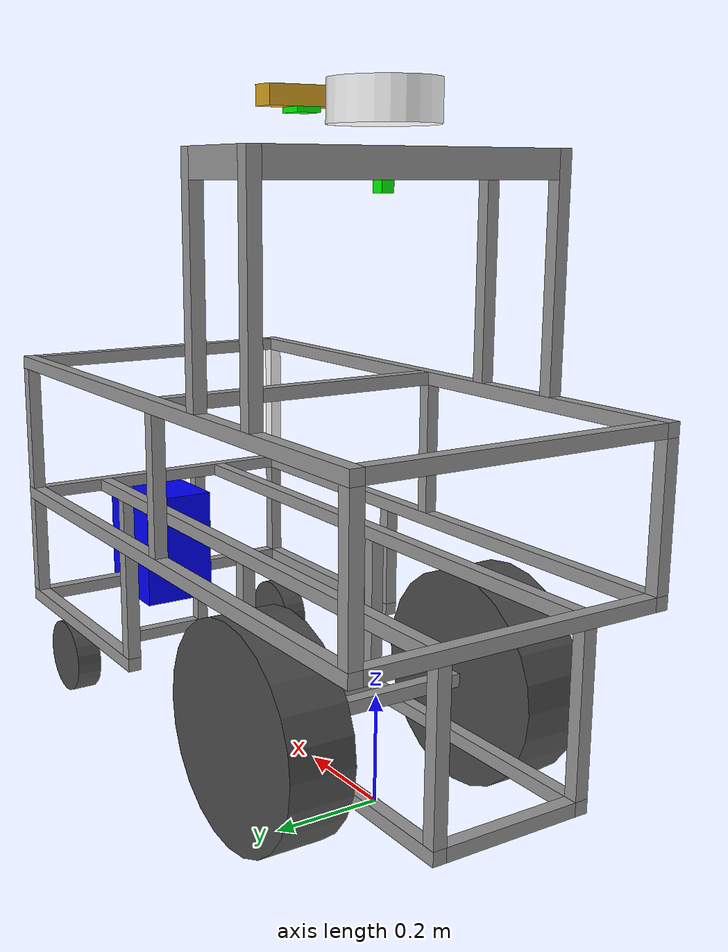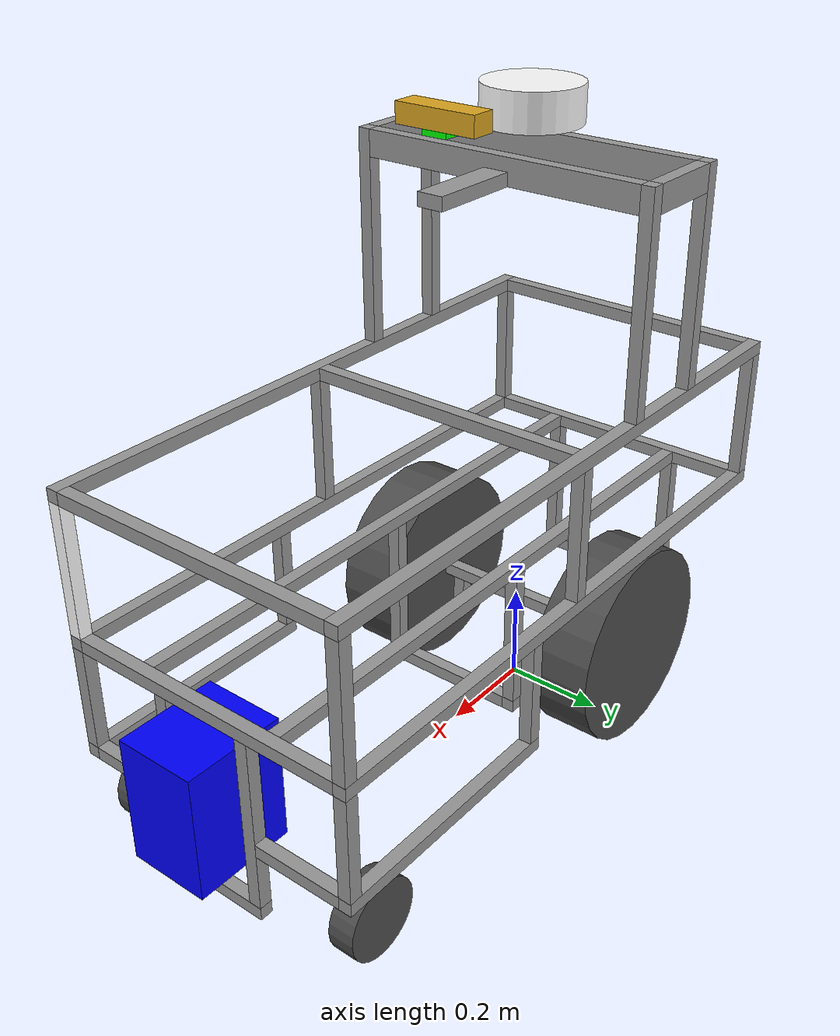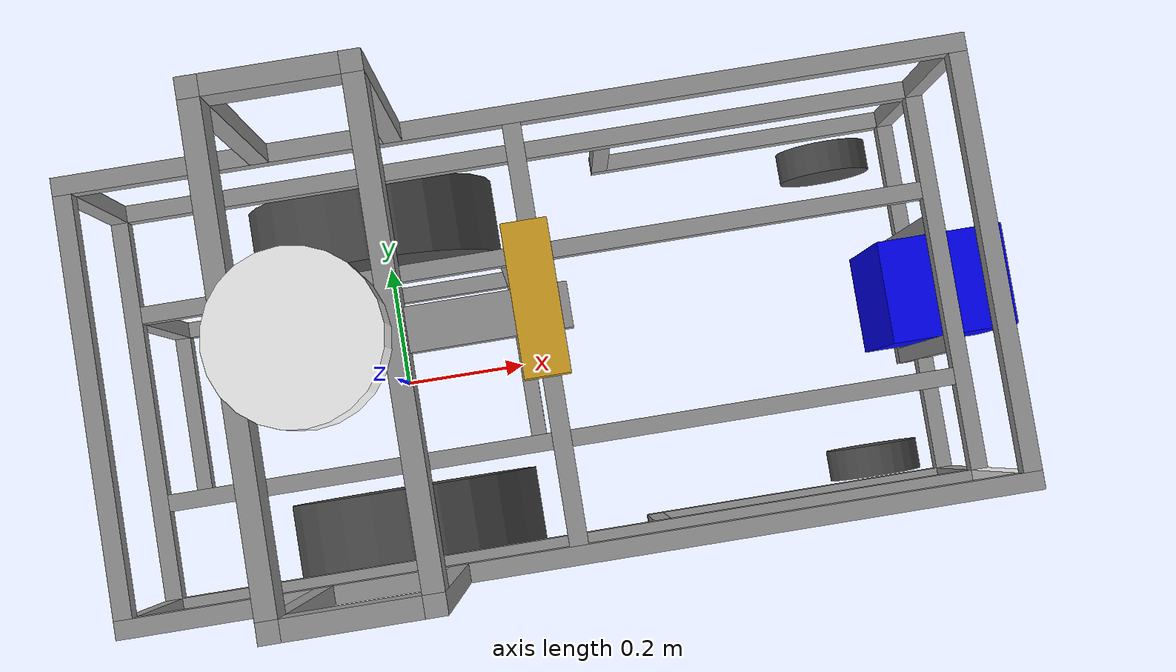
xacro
<?xml version="1.0"?>
<!-- Revolute-Revolute Manipulator -->
<robot name="redblade" xmlns:xacro="http://www.ros.org/wiki/xacro">

  <!-- Constants for robot dimensions -->
  <xacro:property name="PI" value="3.1415926535897931"/>
  <xacro:property name="width" value="0.1" /> <!-- Square dimensions (widthxwidth) of beams -->
  <xacro:property name="height1" value="2" /> <!-- Link 1 -->
  <xacro:property name="height2" value="1" /> <!-- Link 2 -->
  <xacro:property name="height3" value="1" /> <!-- Link 3 -->
  <xacro:property name="camera_link" value="0.05" /> <!-- Size of square 'camera' box -->
  <xacro:property name="axel_offset" value="0.05" /> <!-- Space btw top of beam and the each joint -->
  <xacro:property name="base_wheel_width" value="0.12" />
  <xacro:property name="base_wheel_radius" value="0.12" />
  <xacro:property name="base_wheel_mass" value="1.0" />
  <xacro:property name="caster_wheel_width" value="0.05" />
  <xacro:property name="caster_wheel_radius" value="0.075" />
  <xacro:property name="caster_wheel_mass" value="1.0" />
  <xacro:property name="torque" value="20.0" />

  <!-- Import all Gazebo-customization elements, including Gazebo colors -->
  <xacro:include filename="$(find redblade_description)/urdf/redblade.gazebo" />
  <!-- Import Rviz colors -->
  <xacro:include filename="$(find redblade_description)/urdf/materials.xacro" />

  <!-- Used for fixing robot to Gazebo 'base_link' -->

  <link name="base_footprint">
    <visual>
      <geometry>
  	<cylinder length="0.001" radius="0.01"/>
      </geometry>
      <material name="black"/>
    </visual>
  </link>

  <link name="base_link">
    <visual>
      <geometry>
  	<box size="0.025 0.35 0.025"/>
      </geometry>
      <material name="grey"/>
      <origin rpy="0 0 0" xyz="0 0 0"/>
    </visual>
    <inertial>
      <origin rpy="0 0 0" xyz="0 0 0"/>
      <mass value="1"/>
      <inertia ixx="1" ixy="0" ixz="0" iyy="1" iyz="0" izz="1"/>
    </inertial>

  </link>
  <joint name="to_base_link" type="fixed">
    <parent link="base_footprint"/>
    <child link="base_link"/>
    <origin xyz="0 0 0.195"/>
  </joint>

    <link name="wheel_left">
      <visual>
  	<geometry>
  	  <cylinder length="0.12" radius="0.1975"/>
  	</geometry>
  	<material name="wheel"/>
  	<origin rpy="1.5707 0 0" xyz="0 0 0"/>
      </visual>
      <inertial>
  	<origin rpy="0 0 0" xyz="0 0 0"/>
  	<mass value="${base_wheel_mass}"/>
	<inertia ixx="${base_wheel_mass*base_wheel_radius*base_wheel_radius/4+base_wheel_mass*base_wheel_width*base_wheel_width)}"
		 ixy="0" ixz="0"
		 iyy="${base_wheel_mass*base_wheel_radius*base_wheel_radius/4+base_wheel_mass*base_wheel_width*base_wheel_width)}"
		 iyz="0" izz="${base_wheel_mass*base_wheel_radius*base_wheel_radius/2)}" />
      </inertial>
    <collision>
      <origin rpy="1.5707 0 0" xyz="0 0 0"/>
      <geometry>
        <cylinder length="0.12" radius="0.1975"/>
      </geometry>
    </collision>

    </link>
    <joint name="to_wheel_left" type="continuous">
      <parent link="base_link"/>
      <child link="wheel_left"/>
      <axis xyz="0 1 0"/>
      <origin xyz="0 0.235 0"/>
    </joint>

    <link name="wheel_right">
      <visual>
  	<geometry>
  	  <cylinder length="0.12" radius="0.1975"/>
  	</geometry>
  	<material name="wheel"/>
  	<origin rpy="1.5707 0 0" xyz="0 0 0"/>
      </visual>
      <inertial>
  	<origin rpy="0 0 0" xyz="0 0 0"/>
   	<mass value="${base_wheel_mass}"/>
	<inertia ixx="${base_wheel_mass*base_wheel_radius*base_wheel_radius/4+base_wheel_mass*base_wheel_width*base_wheel_width)}"
		 ixy="0" ixz="0"
		 iyy="${base_wheel_mass*base_wheel_radius*base_wheel_radius/4+base_wheel_mass*base_wheel_width*base_wheel_width)}"
		 iyz="0" izz="${base_wheel_mass*base_wheel_radius*base_wheel_radius/2)}" />
      </inertial>
      <collision>
	<origin rpy="1.5707 0 0" xyz="0 0 0"/>
	<geometry>
	  <cylinder length="0.12" radius="0.1975"/>
	</geometry>
      </collision>

    </link>
    <joint name="to_wheel_right" type="continuous">
      <parent link="base_link"/>
      <child link="wheel_right"/>
      <axis xyz="0 1 0"/>
      <origin xyz="0 -0.235 0"/>
    </joint>

    <link name="motor_mount_left">
      <visual>
  	<geometry>
  	  <box size="0.025 0.025 0.0575"/>
  	</geometry>
  	<material name="grey"/>
  	<origin rpy="0 0 0" xyz="0 0 0"/>
      </visual>
      <inertial>
  	<origin rpy="0 0 0" xyz="0 0 0"/>
  	<mass value="1"/>
  	<inertia ixx="1" ixy="0" ixz="0" iyy="1" iyz="0" izz="1"/>
      </inertial>

    </link>
    <joint name="to_motor_mount_left" type="fixed">
      <parent link="base_link"/>
      <child link="motor_mount_left"/>
      <origin xyz="0 0.14 -0.0412"/>
    </joint>

    <link name="motor_mount_right">
      <visual>
  	<geometry>
  	  <box size="0.025 0.025 0.0575"/>
  	</geometry>
  	<material name="grey"/>
  	<origin rpy="0 0 0" xyz="0 0 0"/>
      </visual>
      <inertial>
  	<origin rpy="0 0 0" xyz="0 0 0"/>
  	<mass value="1"/>
  	<inertia ixx="1" ixy="0" ixz="0" iyy="1" iyz="0" izz="1"/>
      </inertial>

    </link>
    <joint name="to_motor_mount_right" type="fixed">
      <parent link="base_link"/>
      <child link="motor_mount_right"/>
      <origin xyz="0 -0.14 -0.04125"/>
    </joint>

    <link name="motor_area_bottom_left">
      <visual>
  	<geometry>
  	  <box size="0.585 0.025 0.025"/>
  	</geometry>
  	<material name="grey"/>
  	<origin rpy="0 0 0" xyz="0 0 0"/>
      </visual>
      <inertial>
  	<origin rpy="0 0 0" xyz="0 0 0"/>
  	<mass value="1"/>
  	<inertia ixx="1" ixy="0" ixz="0" iyy="1" iyz="0" izz="1"/>
      </inertial>

    </link>
    <joint name="to_motor_area_bottom_left" type="fixed">
      <parent link="motor_mount_left"/>
      <child link="motor_area_bottom_left"/>
      <origin xyz="-0.07 0 -0.04125"/>
    </joint>

    <link name="motor_area_bottom_right">
      <visual>
  	<geometry>
  	  <box size="0.585 0.025 0.025"/>
  	</geometry>
  	<material name="grey"/>
  	<origin rpy="0 0 0" xyz="0 0 0"/>
      </visual>
      <inertial>
  	<origin rpy="0 0 0" xyz="0 0 0"/>
  	<mass value="1"/>
  	<inertia ixx="1" ixy="0" ixz="0" iyy="1" iyz="0" izz="1"/>
      </inertial>

    </link>
    <joint name="to_motor_area_bottom_right" type="fixed">
      <parent link="motor_mount_right"/>
      <child link="motor_area_bottom_right"/>
      <origin xyz="-0.07 0 -0.04125"/>
    </joint>

    <link name="motor_area_bottom_front">
      <visual>
  	<geometry>
  	  <box size="0.025 0.255 0.025"/>
  	</geometry>
  	<material name="grey"/>
  	<origin rpy="0 0 0" xyz="0 0 0"/>
      </visual>
      <inertial>
  	<origin rpy="0 0 0" xyz="0 0 0"/>
  	<mass value="1"/>
  	<inertia ixx="1" ixy="0" ixz="0" iyy="1" iyz="0" izz="1"/>
      </inertial>

    </link>
    <joint name="to_motor_area_bottom_front" type="fixed">
      <parent link="motor_area_bottom_left"/>
      <child link="motor_area_bottom_front"/>
      <origin xyz="0.28 -0.14 0"/>
    </joint>

    <link name="motor_area_bottom_back">
      <visual>
  	<geometry>
  	  <box size="0.025 0.255 0.025"/>
  	</geometry>
  	<material name="grey"/>
  	<origin rpy="0 0 0" xyz="0 0 0"/>
      </visual>
      <inertial>
  	<origin rpy="0 0 0" xyz="0 0 0"/>
  	<mass value="1"/>
  	<inertia ixx="1" ixy="0" ixz="0" iyy="1" iyz="0" izz="1"/>
      </inertial>

    </link>
    <joint name="to_motor_area_bottom_back" type="fixed">
      <parent link="motor_area_bottom_left"/>
      <child link="motor_area_bottom_back"/>
      <origin xyz="-0.28 -0.14 0"/>
    </joint>

    <link name="motor_area_vent_front_left">
      <visual>
  	<geometry>
  	  <box size="0.025 0.025 0.285"/>
  	</geometry>
  	<material name="grey"/>
  	<origin rpy="0 0 0" xyz="0 0 0"/>
      </visual>
      <inertial>
  	<origin rpy="0 0 0" xyz="0 0 0"/>
  	<mass value="1"/>
  	<inertia ixx="1" ixy="0" ixz="0" iyy="1" iyz="0" izz="1"/>
      </inertial>

    </link>
    <joint name="to_motor_area_vent_front_left" type="fixed">
      <parent link="motor_area_bottom_left"/>
      <child link="motor_area_vent_front_left"/>
      <origin xyz="0.28 0 0.155"/>
    </joint>

    <link name="motor_area_vent_back_left">
      <visual>
  	<geometry>
  	  <box size="0.025 0.025 0.285"/>
  	</geometry>
  	<material name="grey"/>
  	<origin rpy="0 0 0" xyz="0 0 0"/>
      </visual>
      <inertial>
  	<origin rpy="0 0 0" xyz="0 0 0"/>
  	<mass value="1"/>
  	<inertia ixx="1" ixy="0" ixz="0" iyy="1" iyz="0" izz="1"/>
      </inertial>

    </link>
    <joint name="to_motor_area_vent_back_left" type="fixed">
      <parent link="motor_area_bottom_left"/>
      <child link="motor_area_vent_back_left"/>
      <origin xyz="-0.28 0 0.155"/>
    </joint>

    <link name="motor_area_vent_front_right">
      <visual>
  	<geometry>
  	  <box size="0.025 0.025 0.285"/>
  	</geometry>
  	<material name="grey"/>
  	<origin rpy="0 0 0" xyz="0 0 0"/>
      </visual>
      <inertial>
  	<origin rpy="0 0 0" xyz="0 0 0"/>
  	<mass value="1"/>
  	<inertia ixx="1" ixy="0" ixz="0" iyy="1" iyz="0" izz="1"/>
      </inertial>

    </link>
    <joint name="to_motor_area_vent_front_right" type="fixed">
      <parent link="motor_area_bottom_right"/>
      <child link="motor_area_vent_front_right"/>
      <origin xyz="0.28 0 0.155"/>
    </joint>

    <link name="motor_area_vent_back_right">
      <visual>
  	<geometry>
  	  <box size="0.025 0.025 0.285"/>
  	</geometry>
  	<material name="grey"/>
  	<origin rpy="0 0 0" xyz="0 0 0"/>
      </visual>
      <inertial>
  	<origin rpy="0 0 0" xyz="0 0 0"/>
  	<mass value="1"/>
  	<inertia ixx="1" ixy="0" ixz="0" iyy="1" iyz="0" izz="1"/>
      </inertial>

    </link>
    <joint name="to_motor_area_vent_back_right" type="fixed">
      <parent link="motor_area_bottom_right"/>
      <child link="motor_area_vent_back_right"/>
      <origin xyz="-0.28 0 0.155"/>
    </joint>

    <link name="main_area_bottom_back">
      <visual>
  	<geometry>
  	  <box size="0.025 0.56 0.025"/>
  	</geometry>
  	<material name="grey"/>
  	<origin rpy="0 0 0" xyz="0 0 0"/>
      </visual>
      <inertial>
  	<origin rpy="0 0 0" xyz="0 0 0"/>
  	<mass value="1"/>
  	<inertia ixx="1" ixy="0" ixz="0" iyy="1" iyz="0" izz="1"/>
      </inertial>

    </link>
    <joint name="to_main_area_bottom_back" type="fixed">
      <parent link="motor_area_vent_back_left"/>
      <child link="main_area_bottom_back"/>
      <origin xyz="0 -0.14 0.155"/>
    </joint>

    <link name="main_area_bottom_left">
      <visual>
  	<geometry>
  	  <box size="1.22 0.025 0.025"/>
  	</geometry>
  	<material name="grey"/>
  	<origin rpy="0 0 0" xyz="0 0 0"/>
      </visual>
      <inertial>
  	<origin rpy="0 0 0" xyz="0 0 0"/>
  	<mass value="1"/>
  	<inertia ixx="1" ixy="0" ixz="0" iyy="1" iyz="0" izz="1"/>
      </inertial>

    </link>
    <joint name="to_main_area_bottom_left" type="fixed">
      <parent link="main_area_bottom_back"/>
      <child link="main_area_bottom_left"/>
      <origin xyz="0.5975 0.2925 0"/>
    </joint>

    <link name="main_area_bottom_right">
      <visual>
  	<geometry>
  	  <box size="1.22 0.025 0.025"/>
  	</geometry>
  	<material name="grey"/>
  	<origin rpy="0 0 0" xyz="0 0 0"/>
      </visual>
      <inertial>
  	<origin rpy="0 0 0" xyz="0 0 0"/>
  	<mass value="1"/>
  	<inertia ixx="1" ixy="0" ixz="0" iyy="1" iyz="0" izz="1"/>
      </inertial>

    </link>
    <joint name="to_main_area_bottom_right" type="fixed">
      <parent link="main_area_bottom_back"/>
      <child link="main_area_bottom_right"/>
      <origin xyz="0.5975 -0.2925 0"/>
    </joint>

    <link name="main_area_bottom_center_left">
      <visual>
  	<geometry>
  	  <box size="1.17 0.025 0.025"/>
  	</geometry>
  	<material name="grey"/>
  	<origin rpy="0 0 0" xyz="0 0 0"/>
      </visual>
      <inertial>
  	<origin rpy="0 0 0" xyz="0 0 0"/>
  	<mass value="1"/>
  	<inertia ixx="1" ixy="0" ixz="0" iyy="1" iyz="0" izz="1"/>
      </inertial>

    </link>
    <joint name="to_main_area_bottom_center_left" type="fixed">
      <parent link="main_area_bottom_back"/>
      <child link="main_area_bottom_center_left"/>
      <origin xyz="0.5975 0.14 0"/>
    </joint>

    <link name="main_area_bottom_center_right">
      <visual>
  	<geometry>
  	  <box size="1.17 0.025 0.025"/>
  	</geometry>
  	<material name="grey"/>
  	<origin rpy="0 0 0" xyz="0 0 0"/>
      </visual>
      <inertial>
  	<origin rpy="0 0 0" xyz="0 0 0"/>
  	<mass value="1"/>
  	<inertia ixx="1" ixy="0" ixz="0" iyy="1" iyz="0" izz="1"/>
      </inertial>

    </link>
    <joint name="to_main_area_bottom_center_right" type="fixed">
      <parent link="main_area_bottom_back"/>
      <child link="main_area_bottom_center_right"/>
      <origin xyz="0.5975 -0.14 0"/>
    </joint>

    <link name="main_area_bottom_front">
      <visual>
  	<geometry>
  	  <box size="0.025 0.56 0.025"/>
  	</geometry>
  	<material name="grey"/>
  	<origin rpy="0 0 0" xyz="0 0 0"/>
      </visual>
      <inertial>
  	<origin rpy="0 0 0" xyz="0 0 0"/>
  	<mass value="1"/>
  	<inertia ixx="1" ixy="0" ixz="0" iyy="1" iyz="0" izz="1"/>
      </inertial>

    </link>
    <joint name="to_main_area_bottom_front" type="fixed">
      <parent link="main_area_bottom_left"/>
      <child link="main_area_bottom_front"/>
      <origin xyz="0.5975 -0.2925 0"/>
    </joint>

    <link name="main_area_vent_front_left">
      <visual>
  	<geometry>
  	  <box size="0.025 0.025 0.255"/>
  	</geometry>
  	<material name="grey"/>
  	<origin rpy="0 0 0" xyz="0 0 0"/>
      </visual>
      <inertial>
  	<origin rpy="0 0 0" xyz="0 0 0"/>
  	<mass value="1"/>
  	<inertia ixx="1" ixy="0" ixz="0" iyy="1" iyz="0" izz="1"/>
      </inertial>

    </link>
    <joint name="to_main_area_vent_front_left" type="fixed">
      <parent link="main_area_bottom_left"/>
      <child link="main_area_vent_front_left"/>
      <origin xyz="0.5975 0 0.14"/>
    </joint>

    <link name="main_area_vent_mid_left">
      <visual>
  	<geometry>
  	  <box size="0.025 0.025 0.255"/>
  	</geometry>
  	<material name="grey"/>
  	<origin rpy="0 0 0" xyz="0 0 0"/>
      </visual>
      <inertial>
  	<origin rpy="0 0 0" xyz="0 0 0"/>
  	<mass value="1"/>
  	<inertia ixx="1" ixy="0" ixz="0" iyy="1" iyz="0" izz="1"/>
      </inertial>

    </link>
    <joint name="to_main_area_vent_mid_left" type="fixed">
      <parent link="main_area_bottom_left"/>
      <child link="main_area_vent_mid_left"/>
      <origin xyz="0 0 0.14"/>
    </joint>

    <link name="main_area_vent_back_left">
      <visual>
  	<geometry>
  	  <box size="0.025 0.025 0.255"/>
  	</geometry>
  	<material name="grey"/>
  	<origin rpy="0 0 0" xyz="0 0 0"/>
      </visual>
      <inertial>
  	<origin rpy="0 0 0" xyz="0 0 0"/>
  	<mass value="1"/>
  	<inertia ixx="1" ixy="0" ixz="0" iyy="1" iyz="0" izz="1"/>
      </inertial>

    </link>
    <joint name="to_main_area_vent_back_left" type="fixed">
      <parent link="main_area_bottom_left"/>
      <child link="main_area_vent_back_left"/>
      <origin xyz="-0.5975 0 0.14"/>
    </joint>

    <link name="main_area_vent_front_right">
      <visual>
  	<geometry>
  	  <box size="0.025 0.025 0.255"/>
  	</geometry>
  	<material name="grey">
  	  <color rgba="1 1 1 1"/>
  	</material>
  	<origin rpy="0 0 0" xyz="0 0 0"/>
      </visual>
      <inertial>
  	<origin rpy="0 0 0" xyz="0 0 0"/>
  	<mass value="1"/>
  	<inertia ixx="1" ixy="0" ixz="0" iyy="1" iyz="0" izz="1"/>
      </inertial>

    </link>
    <joint name="to_main_area_vent_front_right" type="fixed">
      <parent link="main_area_bottom_right"/>
      <child link="main_area_vent_front_right"/>
      <origin xyz="0.5975 0 0.14"/>
    </joint>

    <link name="main_area_vent_mid_right">
      <visual>
  	<geometry>
  	  <box size="0.025 0.025 0.255"/>
  	</geometry>
  	<material name="grey"/>
  	<origin rpy="0 0 0" xyz="0 0 0"/>
      </visual>
      <inertial>
  	<origin rpy="0 0 0" xyz="0 0 0"/>
  	<mass value="1"/>
  	<inertia ixx="1" ixy="0" ixz="0" iyy="1" iyz="0" izz="1"/>
      </inertial>

    </link>
    <joint name="to_main_area_vent_mid_right" type="fixed">
      <parent link="main_area_bottom_right"/>
      <child link="main_area_vent_mid_right"/>
      <origin xyz="0 0 0.14"/>
    </joint>

    <link name="main_area_vent_back_right">
      <visual>
  	<geometry>
  	  <box size="0.025 0.025 0.255"/>
  	</geometry>
  	<material name="grey"/>
  	<origin rpy="0 0 0" xyz="0 0 0"/>
      </visual>
      <inertial>
  	<origin rpy="0 0 0" xyz="0 0 0"/>
  	<mass value="1"/>
  	<inertia ixx="1" ixy="0" ixz="0" iyy="1" iyz="0" izz="1"/>
      </inertial>

    </link>
    <joint name="to_main_area_vent_back_right" type="fixed">
      <parent link="main_area_bottom_right"/>
      <child link="main_area_vent_back_right"/>
      <origin xyz="-0.5975 0 0.14"/>
    </joint>

    <link name="main_area_top_left">
      <visual>
  	<geometry>
  	  <box size="1.22 0.025 0.025"/>
  	</geometry>
  	<material name="grey"/>
  	<origin rpy="0 0 0" xyz="0 0 0"/>
      </visual>
      <inertial>
  	<origin rpy="0 0 0" xyz="0 0 0"/>
  	<mass value="1"/>
  	<inertia ixx="1" ixy="0" ixz="0" iyy="1" iyz="0" izz="1"/>
      </inertial>

    </link>
    <joint name="to_main_area_top_left" type="fixed">
      <parent link="main_area_vent_mid_left"/>
      <child link="main_area_top_left"/>
      <origin xyz="0 0 0.14"/>
    </joint>

    <link name="main_area_top_right">
      <visual>
  	<geometry>
  	  <box size="1.22 0.025 0.025"/>
  	</geometry>
  	<material name="grey"/>
  	<origin rpy="0 0 0" xyz="0 0 0"/>
      </visual>
      <inertial>
  	<origin rpy="0 0 0" xyz="0 0 0"/>
  	<mass value="1"/>
  	<inertia ixx="1" ixy="0" ixz="0" iyy="1" iyz="0" izz="1"/>
      </inertial>

    </link>
    <joint name="to_main_area_top_right" type="fixed">
      <parent link="main_area_vent_mid_right"/>
      <child link="main_area_top_right"/>
      <origin xyz="0 0 0.14"/>
    </joint>

    <link name="main_area_top_front">
      <visual>
  	<geometry>
  	  <box size="0.025 0.56 0.025"/>
  	</geometry>
  	<material name="grey"/>
  	<origin rpy="0 0 0" xyz="0 0 0"/>
      </visual>
      <inertial>
  	<origin rpy="0 0 0" xyz="0 0 0"/>
  	<mass value="1"/>
  	<inertia ixx="1" ixy="0" ixz="0" iyy="1" iyz="0" izz="1"/>
      </inertial>

    </link>
    <joint name="to_main_area_top_front" type="fixed">
      <parent link="main_area_top_left"/>
      <child link="main_area_top_front"/>
      <origin xyz="0.5975 -0.2925 0"/>
    </joint>

    <link name="main_area_top_mid">
      <visual>
  	<geometry>
  	  <box size="0.025 0.56 0.025"/>
  	</geometry>
  	<material name="grey"/>
  	<origin rpy="0 0 0" xyz="0 0 0"/>
      </visual>
      <inertial>
  	<origin rpy="0 0 0" xyz="0 0 0"/>
  	<mass value="1"/>
  	<inertia ixx="1" ixy="0" ixz="0" iyy="1" iyz="0" izz="1"/>
      </inertial>

    </link>
    <joint name="to_main_area_top_mid" type="fixed">
      <parent link="main_area_top_left"/>
      <child link="main_area_top_mid"/>
      <origin xyz="0 -0.2925 0"/>
    </joint>

    <link name="main_area_top_back">
      <visual>
  	<geometry>
  	  <box size="0.025 0.56 0.025"/>
  	</geometry>
  	<material name="grey"/>
  	<origin rpy="0 0 0" xyz="0 0 0"/>
      </visual>
      <inertial>
  	<origin rpy="0 0 0" xyz="0 0 0"/>
  	<mass value="1"/>
  	<inertia ixx="1" ixy="0" ixz="0" iyy="1" iyz="0" izz="1"/>
      </inertial>

    </link>
    <joint name="to_main_area_top_back" type="fixed">
      <parent link="main_area_top_left"/>
      <child link="main_area_top_back"/>
      <origin xyz="-0.5975 -0.2925 0"/>
    </joint>

    <link name="tower_area_vent_back_left">
      <visual>
  	<geometry>
  	  <box size="0.025 0.025 0.41"/>
  	</geometry>
  	<material name="grey"/>
  	<origin rpy="0 0 0" xyz="0 0 0"/>
      </visual>
      <inertial>
  	<origin rpy="0 0 0" xyz="0 0 0"/>
  	<mass value="1"/>
  	<inertia ixx="1" ixy="0" ixz="0" iyy="1" iyz="0" izz="1"/>
      </inertial>

    </link>
    <joint name="to_tower_area_vent_back_left" type="fixed">
      <parent link="main_area_top_left"/>
      <child link="tower_area_vent_back_left"/>
      <origin xyz="-0.335 0 0.2175"/>
    </joint>

    <link name="tower_area_vent_front_left">
      <visual>
  	<geometry>
  	  <box size="0.025 0.025 0.41"/>
  	</geometry>
  	<material name="grey"/>
  	<origin rpy="0 0 0" xyz="0 0 0"/>
      </visual>
      <inertial>
  	<origin rpy="0 0 0" xyz="0 0 0"/>
  	<mass value="1"/>
  	<inertia ixx="1" ixy="0" ixz="0" iyy="1" iyz="0" izz="1"/>
      </inertial>

    </link>
    <joint name="to_tower_area_vent_front_left" type="fixed">
      <parent link="main_area_top_left"/>
      <child link="tower_area_vent_front_left"/>
      <origin xyz="-0.1575 0 0.2175"/>
    </joint>

    <link name="tower_area_vent_back_right">
      <visual>
  	<geometry>
  	  <box size="0.025 0.025 0.41"/>
  	</geometry>
  	<material name="grey"/>
  	<origin rpy="0 0 0" xyz="0 0 0"/>
      </visual>
      <inertial>
  	<origin rpy="0 0 0" xyz="0 0 0"/>
  	<mass value="1"/>
  	<inertia ixx="1" ixy="0" ixz="0" iyy="1" iyz="0" izz="1"/>
      </inertial>

    </link>
    <joint name="to_tower_area_vent_back_right" type="fixed">
      <parent link="main_area_top_right"/>
      <child link="tower_area_vent_back_right"/>
      <origin xyz="-0.335 0 0.2175"/>
    </joint>

    <link name="tower_area_vent_front_right">
      <visual>
  	<geometry>
  	  <box size="0.025 0.025 0.41"/>
  	</geometry>
  	<material name="grey"/>
  	<origin rpy="0 0 0" xyz="0 0 0"/>
      </visual>
      <inertial>
  	<origin rpy="0 0 0" xyz="0 0 0"/>
  	<mass value="1"/>
  	<inertia ixx="1" ixy="0" ixz="0" iyy="1" iyz="0" izz="1"/>
      </inertial>

    </link>
    <joint name="to_tower_area_vent_front_right" type="fixed">
      <parent link="main_area_top_right"/>
      <child link="tower_area_vent_front_right"/>
      <origin xyz="-0.1575 0 0.2175"/>
    </joint>

    <link name="tower_area_top_left">
      <visual>
  	<geometry>
  	  <box size="0.1525 0.025 0.05"/>
  	</geometry>
  	<material name="grey"/>
  	<origin rpy="0 0 0" xyz="0 0 0"/>
      </visual>
      <inertial>
  	<origin rpy="0 0 0" xyz="0 0 0"/>
  	<mass value="1"/>
  	<inertia ixx="1" ixy="0" ixz="0" iyy="1" iyz="0" izz="1"/>
      </inertial>

    </link>
    <joint name="to_tower_area_top_left" type="fixed">
      <parent link="tower_area_vent_back_left"/>
      <child link="tower_area_top_left"/>
      <origin xyz="0.08875 0 0.18"/>
    </joint>

    <link name="tower_area_top_right">
      <visual>
  	<geometry>
  	  <box size="0.1525 0.025 0.05"/>
  	</geometry>
  	<material name="grey"/>
  	<origin rpy="0 0 0" xyz="0 0 0"/>
      </visual>
      <inertial>
  	<origin rpy="0 0 0" xyz="0 0 0"/>
  	<mass value="1"/>
  	<inertia ixx="1" ixy="0" ixz="0" iyy="1" iyz="0" izz="1"/>
      </inertial>

    </link>
    <joint name="to_tower_area_top_right" type="fixed">
      <parent link="tower_area_vent_back_right"/>
      <child link="tower_area_top_right"/>
      <origin xyz="0.08875 0 0.18"/>
    </joint>

    <link name="tower_area_top_back">
      <visual>
  	<geometry>
  	  <box size="0.025 0.56 0.05"/>
  	</geometry>
  	<material name="grey"/>
  	<origin rpy="0 0 0" xyz="0 0 0"/>
      </visual>
      <inertial>
  	<origin rpy="0 0 0" xyz="0 0 0"/>
  	<mass value="1"/>
  	<inertia ixx="1" ixy="0" ixz="0" iyy="1" iyz="0" izz="1"/>
      </inertial>

    </link>
    <joint name="to_tower_area_top_back" type="fixed">
      <parent link="tower_area_vent_back_left"/>
      <child link="tower_area_top_back"/>
      <origin xyz="0 -0.2925 0.18"/>
    </joint>

    <link name="tower_area_top_front">
      <visual>
  	<geometry>
  	  <box size="0.025 0.56 0.05"/>
  	</geometry>
  	<material name="grey"/>
  	<origin rpy="0 0 0" xyz="0 0 0"/>
      </visual>
      <inertial>
  	<origin rpy="0 0 0" xyz="0 0 0"/>
  	<mass value="1"/>
  	<inertia ixx="1" ixy="0" ixz="0" iyy="1" iyz="0" izz="1"/>
      </inertial>

    </link>
    <joint name="to_tower_area_top_front" type="fixed">
      <parent link="tower_area_vent_front_left"/>
      <child link="tower_area_top_front"/>
      <origin xyz="0 -0.2925 0.18"/>
    </joint>

    <link name="tower_area_top_front_bar">
      <visual>
  	<geometry>
  	  <box size="0.1775 0.05 0.025"/>
  	</geometry>
  	<material name="grey"/>
  	<origin rpy="0 0 0" xyz="0 0 0"/>
      </visual>
      <inertial>
  	<origin rpy="0 0 0" xyz="0 0 0"/>
  	<mass value="1"/>
  	<inertia ixx="1" ixy="0" ixz="0" iyy="1" iyz="0" izz="1"/>
      </inertial>

    </link>
    <joint name="to_tower_area_top_front_bar" type="fixed">
      <parent link="tower_area_top_front"/>
      <child link="tower_area_top_front_bar"/>
      <origin xyz="0.10125 0 -0.0125"/>
    </joint>

    <link name="deck_area_vent_front_left">
      <visual>
  	<geometry>
  	  <box size="0.025 0.025 0.2025"/>
  	</geometry>
  	<material name="grey"/>
  	<origin rpy="0 0 0" xyz="0 0 0"/>
      </visual>
      <inertial>
  	<origin rpy="0 0 0" xyz="0 0 0"/>
  	<mass value="1"/>
  	<inertia ixx="1" ixy="0" ixz="0" iyy="1" iyz="0" izz="1"/>
      </inertial>

    </link>
    <joint name="to_deck_area_vent_front_left" type="fixed">
      <parent link="main_area_bottom_left"/>
      <child link="deck_area_vent_front_left"/>
      <origin xyz="0.5975 0 -0.11375"/>
    </joint>

    <link name="deck_area_vent_back_left">
      <visual>
  	<geometry>
  	  <box size="0.025 0.025 0.2025"/>
  	</geometry>
  	<material name="grey"/>
  	<origin rpy="0 0 0" xyz="0 0 0"/>
      </visual>
      <inertial>
  	<origin rpy="0 0 0" xyz="0 0 0"/>
  	<mass value="1"/>
  	<inertia ixx="1" ixy="0" ixz="0" iyy="1" iyz="0" izz="1"/>
      </inertial>

    </link>
    <joint name="to_deck_area_vent_back_left" type="fixed">
      <parent link="main_area_bottom_left"/>
      <child link="deck_area_vent_back_left"/>
      <origin xyz="0.1275 0 -0.11375"/>
    </joint>

    <link name="deck_area_bottom_left">
      <visual>
  	<geometry>
  	  <box size="0.495 0.025 0.025"/>
  	</geometry>
  	<material name="grey"/>
  	<origin rpy="0 0 0" xyz="0 0 0"/>
      </visual>
      <inertial>
  	<origin rpy="0 0 0" xyz="0 0 0"/>
  	<mass value="1"/>
  	<inertia ixx="1" ixy="0" ixz="0" iyy="1" iyz="0" izz="1"/>
      </inertial>

    </link>
    <joint name="to_deck_area_bottom_left" type="fixed">
      <parent link="deck_area_vent_front_left"/>
      <child link="deck_area_bottom_left"/>
      <origin xyz="-0.235 0 -0.11375"/>
    </joint>

    <link name="deck_area_bottom_side_left">
      <visual>
  	<geometry>
  	  <box size="0.025 0.1775 0.025"/>
  	</geometry>
  	<material name="grey"/>
  	<origin rpy="0 0 0" xyz="0 0 0"/>
      </visual>
      <inertial>
  	<origin rpy="0 0 0" xyz="0 0 0"/>
  	<mass value="1"/>
  	<inertia ixx="1" ixy="0" ixz="0" iyy="1" iyz="0" izz="1"/>
      </inertial>

    </link>
    <joint name="to_deck_area_bottom_side_left" type="fixed">
      <parent link="deck_area_bottom_left"/>
      <child link="deck_area_bottom_side_left"/>
      <origin xyz="0.235 -0.101125 0"/>
    </joint>

    <link name="deck_area_vent_front_right">
      <visual>
  	<geometry>
  	  <box size="0.025 0.025 0.2025"/>
  	</geometry>
  	<material name="grey"/>
  	<origin rpy="0 0 0" xyz="0 0 0"/>
      </visual>
      <inertial>
  	<origin rpy="0 0 0" xyz="0 0 0"/>
  	<mass value="1"/>
  	<inertia ixx="1" ixy="0" ixz="0" iyy="1" iyz="0" izz="1"/>
      </inertial>

    </link>
    <joint name="to_deck_area_vent_front_right" type="fixed">
      <parent link="main_area_bottom_right"/>
      <child link="deck_area_vent_front_right"/>
      <origin xyz="0.5975 0 -0.11375"/>
    </joint>

    <link name="deck_area_vent_back_right">
      <visual>
  	<geometry>
  	  <box size="0.025 0.025 0.2025"/>
  	</geometry>
  	<material name="grey"/>
  	<origin rpy="0 0 0" xyz="0 0 0"/>
      </visual>
      <inertial>
  	<origin rpy="0 0 0" xyz="0 0 0"/>
  	<mass value="1"/>
  	<inertia ixx="1" ixy="0" ixz="0" iyy="1" iyz="0" izz="1"/>
      </inertial>

    </link>
    <joint name="to_deck_area_vent_back_right" type="fixed">
      <parent link="main_area_bottom_right"/>
      <child link="deck_area_vent_back_right"/>
      <origin xyz="0.1275 0 -0.11375"/>
    </joint>

    <link name="deck_area_bottom_right">
      <visual>
  	<geometry>
  	  <box size="0.495 0.025 0.025"/>
  	</geometry>
  	<material name="grey"/>
  	<origin rpy="0 0 0" xyz="0 0 0"/>
      </visual>
      <inertial>
  	<origin rpy="0 0 0" xyz="0 0 0"/>
  	<mass value="1"/>
  	<inertia ixx="1" ixy="0" ixz="0" iyy="1" iyz="0" izz="1"/>
      </inertial>

    </link>
    <joint name="to_deck_area_bottom_right" type="fixed">
      <parent link="deck_area_vent_front_right"/>
      <child link="deck_area_bottom_right"/>
      <origin xyz="-0.235 0 -0.11375"/>
    </joint>

    <link name="deck_area_bottom_side_right">
      <visual>
  	<geometry>
  	  <box size="0.025 0.1775 0.025"/>
  	</geometry>
  	<material name="grey"/>
  	<origin rpy="0 0 0" xyz="0 0 0"/>
      </visual>
      <inertial>
  	<origin rpy="0 0 0" xyz="0 0 0"/>
  	<mass value="1"/>
  	<inertia ixx="1" ixy="0" ixz="0" iyy="1" iyz="0" izz="1"/>
      </inertial>

    </link>
    <joint name="to_deck_area_bottom_side_right" type="fixed">
      <parent link="deck_area_bottom_right"/>
      <child link="deck_area_bottom_side_right"/>
      <origin xyz="0.235 0.10125 0"/>
    </joint>

    <link name="lidar_area_vert_left">
      <visual>
  	<geometry>
  	  <box size="0.025 0.025 0.3425"/>
  	</geometry>
  	<material name="grey"/>
  	<origin rpy="0 0 0" xyz="0 0 0"/>
      </visual>
      <inertial>
  	<origin rpy="0 0 0" xyz="0 0 0"/>
  	<mass value="1"/>
  	<inertia ixx="1" ixy="0" ixz="0" iyy="1" iyz="0" izz="1"/>
      </inertial>

    </link>
    <joint name="to_lidar_area_vert_left" type="fixed">
      <parent link="main_area_bottom_front"/>
      <child link="lidar_area_vert_left"/>
      <origin xyz="0 0.09 -0.18375"/>
    </joint>

    <link name="lidar_area_vert_right">
      <visual>
  	<geometry>
  	  <box size="0.025 0.025 0.3425"/>
  	</geometry>
  	<material name="grey"/>
  	<origin rpy="0 0 0" xyz="0 0 0"/>
      </visual>
      <inertial>
  	<origin rpy="0 0 0" xyz="0 0 0"/>
  	<mass value="1"/>
  	<inertia ixx="1" ixy="0" ixz="0" iyy="1" iyz="0" izz="1"/>
      </inertial>

    </link>
    <joint name="to_lidar_area_vert_right" type="fixed">
      <parent link="main_area_bottom_front"/>
      <child link="lidar_area_vert_right"/>
      <origin xyz="0 -0.09 -0.18375"/>
    </joint>

    <link name="lidar_area_bottom">
      <visual>
  	<geometry>
  	  <box size="0.025 0.205 0.025"/>
  	</geometry>
  	<material name="grey"/>
  	<origin rpy="0 0 0" xyz="0 0 0"/>
      </visual>
      <inertial>
  	<origin rpy="0 0 0" xyz="0 0 0"/>
  	<mass value="1"/>
  	<inertia ixx="1" ixy="0" ixz="0" iyy="1" iyz="0" izz="1"/>
      </inertial>

    </link>
    <joint name="to_lidar_area_bottom" type="fixed">
      <parent link="lidar_area_vert_left"/>
      <child link="lidar_area_bottom"/>
      <origin xyz="0 -0.09 -0.18375"/>
    </joint>

    <link name="caster_left">
      <visual>
  	<geometry>
  	  <cylinder length="0.05" radius="0.075"/>
  	</geometry>
  	<material name="wheel"/>
  	<origin rpy="1.5707 0 0" xyz="0 0 0"/>
      </visual>
      <inertial>
  	<origin rpy="0 0 0" xyz="0 0 0"/>
  	<mass value="${caster_wheel_mass}"/>
	<inertia ixx="${caster_wheel_mass*caster_wheel_radius*caster_wheel_radius/4+caster_wheel_mass*caster_wheel_width*caster_wheel_width)}"
		 ixy="0" ixz="0"
		 iyy="${caster_wheel_mass*caster_wheel_radius*caster_wheel_radius/4+caster_wheel_mass*caster_wheel_width*caster_wheel_width)}"
		 iyz="0" izz="${caster_wheel_mass*caster_wheel_radius*caster_wheel_radius/2)}" />
      </inertial>
      <collision>
	<origin rpy="1.5707 0 0" xyz="0 0 0"/>
	<geometry>
	  <cylinder length="0.05" radius="0.075"/>
	</geometry>
      </collision>

    </link>
    <joint name="to_caster_left" type="continuous">
      <parent link="deck_area_bottom_left"/>
      <child link="caster_left"/>
      <origin xyz="0.1475 -0.0375 -0.1175"/>
    </joint>

    <link name="caster_right">
      <visual>
  	<geometry>
  	  <cylinder length="0.05" radius="0.075"/>
  	</geometry>
  	<material name="wheel"/>
  	<origin rpy="1.5707 0 0" xyz="0 0 0"/>
      </visual>
      <inertial>
  	<origin rpy="0 0 0" xyz="0 0 0"/>
  	<mass value="${caster_wheel_mass}"/>
	<inertia ixx="${caster_wheel_mass*caster_wheel_radius*caster_wheel_radius/4+caster_wheel_mass*caster_wheel_width*caster_wheel_width)}"
		 ixy="0" ixz="0"
		 iyy="${caster_wheel_mass*caster_wheel_radius*caster_wheel_radius/4+caster_wheel_mass*caster_wheel_width*caster_wheel_width)}"
		 iyz="0" izz="${caster_wheel_mass*caster_wheel_radius*caster_wheel_radius/2)}" />
      </inertial>
      <collision>
	<origin rpy="1.5707 0 0" xyz="0 0 0"/>
	<geometry>
	  <cylinder length="0.05" radius="0.075"/>
	</geometry>
      </collision>

    </link>
    <joint name="to_caster_right" type="continuous">
      <parent link="deck_area_bottom_right"/>
      <child link="caster_right"/>
      <origin xyz="0.1475 0.0375 -0.1175"/>
    </joint>

    <link name="laser">
      <visual>
  	<geometry>
  	  <box size="0.19 0.155 0.24"/>
  	</geometry>
  	<material name="blue"/>
  	<origin rpy="0 0 0" xyz="0 0 0"/>
      </visual>
      <inertial>
  	<origin rpy="0 0 0" xyz="0 0 0"/>
  	<mass value="1"/>
  	<inertia ixx="1" ixy="0" ixz="0" iyy="1" iyz="0" izz="1"/>
      </inertial>

    </link>
    <joint name="to_laser" type="fixed">
      <parent link="main_area_bottom_front"/>
      <child link="laser"/>
      <origin xyz="0.0125 0 -0.1525"/>
    </joint>

    <link name="gps">
      <visual>
  	<geometry>
  	  <cylinder length="0.07" radius="0.0925"/>
  	</geometry>
  	<material name="white"/>
  	<origin rpy="0 0 0" xyz="0 0 0"/>
      </visual>
      <inertial>
  	<origin rpy="0 0 0" xyz="0 0 0"/>
  	<mass value="1"/>
  	<inertia ixx="1" ixy="0" ixz="0" iyy="1" iyz="0" izz="1"/>
      </inertial>

    </link>
    <joint name="to_gps" type="fixed">
      <parent link="base_link"/>
      <child link="gps"/>
      <origin xyz="0 0 1"/>
    </joint>

    <link name="stereo_camera_test">
      <visual>
  	<geometry>
  	  <box size="0.0474 0.0474 0.01"/>
  	</geometry>
  	<material name="green"/>
  	<origin rpy="0 0 0" xyz="0 0 0"/>
      </visual>
      <inertial>
  	<origin rpy="0 0 0" xyz="0 0 0"/>
  	<mass value="1"/>
  	<inertia ixx="1" ixy="0" ixz="0" iyy="1" iyz="0" izz="1"/>
      </inertial>

    </link>
    <joint name="to_stereo_camera_test" type="fixed">
      <parent link="base_link"/>
      <child link="stereo_camera_test"/>
      <origin rpy="0 0 0" xyz="0.245 0 0.997"/>
    </joint>

    <link name="stereo_camera_center">
      <visual>
  	<geometry>
  	  <box size="0.001 0.001 0.001"/>
  	</geometry>
  	<material name="gold"/>
  	<origin rpy="0 0 0" xyz="0 0 0"/>
      </visual>
      <inertial>
  	<origin rpy="0 0 0" xyz="0 0 0"/>
  	<mass value="1"/>
  	<inertia ixx="1" ixy="0" ixz="0" iyy="1" iyz="0" izz="1"/>
      </inertial>

    </link>
    <joint name="to_stereo_camera_center" type="fixed">
      <parent link="base_link"/>
      <child link="stereo_camera_center"/>
      <origin rpy="-1.5707 0 0" xyz="0.245 0 1.02"/>
    </joint>

    <link name="stereo_camera">
      <visual>
  	<geometry>
  	  <box size="0.0474 0.157 0.036"/>
  	</geometry>
  	<material name="gold"/>
  	<origin rpy="0 1.5707 1.5707" xyz="0 0 0"/>
      </visual>
      <inertial>
  	<origin rpy="0 0 0" xyz="0 0 0"/>
  	<mass value="1"/>
  	<inertia ixx="1" ixy="0" ixz="0" iyy="1" iyz="0" izz="1"/>
      </inertial>

    </link>
    <joint name="to_stereo_camera" type="fixed">
      <parent link="stereo_camera_center"/>
      <child link="stereo_camera"/>
      <origin rpy="0 1.5707 0" xyz="0 0 0"/>
    </joint>

    <link name="imu_flip1">
      <visual>
  	<geometry>
  	  <box size="0.001 0.001 0.001"/>
  	</geometry>
  	<material name="black"/>
  	<origin rpy="0 0 0" xyz="0 0 0"/>
      </visual>
      <inertial>
  	<origin rpy="0 0 0" xyz="0 0 0"/>
  	<mass value="1"/>
  	<inertia ixx="1" ixy="0" ixz="0" iyy="1" iyz="0" izz="1"/>
      </inertial>

    </link>
    <joint name="to_imu_flip1" type="fixed">
      <parent link="base_link"/>
      <child link="imu_flip1"/>
      <origin rpy="0 0 1.5707" xyz="0 0 0"/>
    </joint>

    <link name="imu_flip2">
      <visual>
  	<geometry>
  	  <box size="0.001 0.001 0.001"/>
  	</geometry>
  	<material name="black"/>
  	<origin rpy="0 0 0" xyz="0 0 0"/>
      </visual>
      <inertial>
  	<origin rpy="0 0 0" xyz="0 0 0"/>
  	<mass value="1"/>
  	<inertia ixx="1" ixy="0" ixz="0" iyy="1" iyz="0" izz="1"/>
      </inertial>

    </link>
    <joint name="to_imu_flip2" type="fixed">
      <parent link="imu_flip1"/>
      <child link="imu_flip2"/>
      <origin rpy="3.14159 0 0" xyz="0 0 0"/>
    </joint>

    <link name="imu">
      <visual>
  	<geometry>
  	  <box size="0.024 0.044 0.011"/>
  	</geometry>
  	<material name="black"/>
  	<origin rpy="0 0 0" xyz="0 0 0"/>
      </visual>
      <inertial>
  	<origin rpy="0 0 0" xyz="0 0 0"/>
  	<mass value="1"/>
  	<inertia ixx="1" ixy="0" ixz="0" iyy="1" iyz="0" izz="1"/>
      </inertial>

    </link>
    <joint name="to_imu" type="fixed">
      <parent link="base_link"/>
      <child link="imu"/>
      <origin rpy="0 0 0" xyz="0 0 0.8855"/>
    </joint>

    <link name="imu_test">
      <visual>
  	<geometry>
  	  <box size="0.024 0.024 0.02"/>
  	</geometry>
  	<material name="green"/>
  	<origin rpy="0 0 0" xyz="0 0 0"/>
      </visual>
      <inertial>
  	<origin rpy="0 0 0" xyz="0 0 0"/>
  	<mass value="1"/>
  	<inertia ixx="1" ixy="0" ixz="0" iyy="1" iyz="0" izz="1"/>
      </inertial>

    </link>
    <joint name="to_imu_test" type="fixed">
      <parent link="base_link"/>
      <child link="imu_test"/>
      <origin rpy="0 0 0" xyz="0 0 0.87"/>
    </joint>

  <transmission name="wheel_left_tran">
    <type>transmission_interface/SimpleTransmission</type>
    <joint name="to_wheel_left"/>
    <actuator name="motor1">
      <hardwareInterface>EffortJointInterface</hardwareInterface>
      <mechanicalReduction>1</mechanicalReduction>
      <motorTorqueConstant>20</motorTorqueConstant>
    </actuator>
  </transmission>

  <transmission name="wheel_right_tran">
    <type>transmission_interface/SimpleTransmission</type>
    <joint name="to_wheel_right"/>
    <actuator name="motor2">
      <hardwareInterface>EffortJointInterface</hardwareInterface>
      <mechanicalReduction>1</mechanicalReduction>
      <motorTorqueConstant>20</motorTorqueConstant>
    </actuator>
  </transmission>

</robot>

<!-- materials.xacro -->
<robot>
  <material name="red">
    <color rgba="1 0 0 1"/>
  </material>
  <material name="green">
    <color rgba="0 1 0 1"/>
  </material>
  <material name="blue">
    <color rgba="0 0 1 1"/>
  </material>
  <material name="black">
    <color rgba="0 0 0 1"/>
  </material>
  <material name="white">
    <color rgba="1 1 1 1"/>
  </material>
  <material name="grey">
    <color rgba="0.6 0.6 0.6 1"/>
  </material>
  <material name="gold">
    <color rgba="0.855 0.647 0.125 1"/>
  </material>
  <material name="wheel">
    <color rgba="0.3 0.3 0.3 1"/>
  </material>

</robot>
